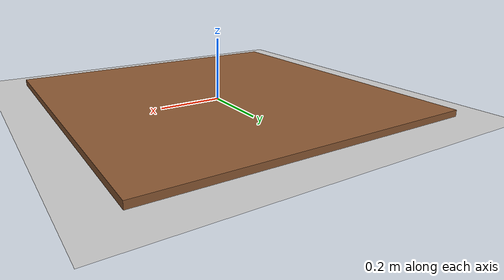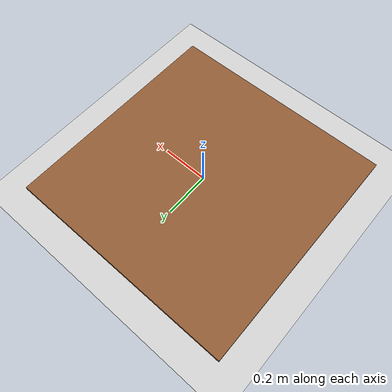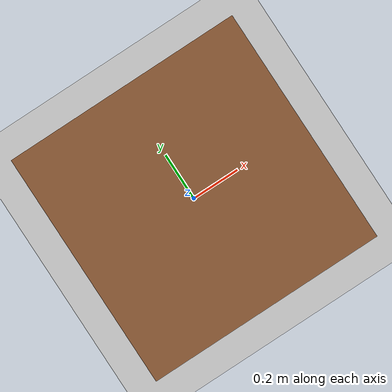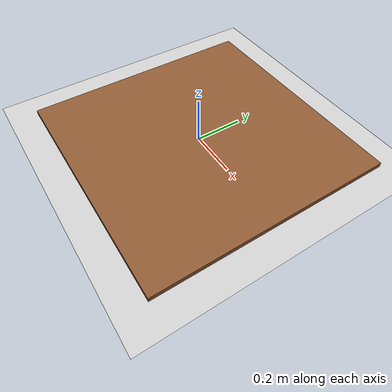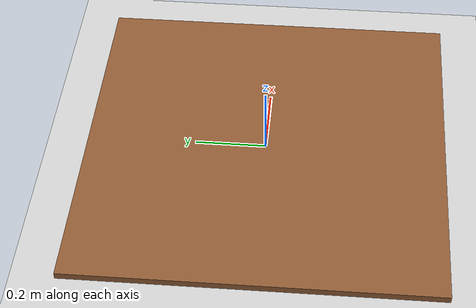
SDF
<?xml version="1.0" ?>
<sdf version="1.6">
  <world name="empty">
    <physics name="1ms" type="ignored">
      <max_step_size>0.001</max_step_size>
      <real_time_factor>1.0</real_time_factor>
    </physics>
    <plugin
      filename="gz-sim-physics-system"
      name="gz::sim::systems::Physics">
      <engine>
        <filename>gz-physics-bullet-featherstone-plugin</filename>
      </engine>
    </plugin>
    <plugin
      filename="gz-sim-user-commands-system"
      name="gz::sim::systems::UserCommands">
    </plugin>
    <plugin
      filename="gz-sim-scene-broadcaster-system"
      name="gz::sim::systems::SceneBroadcaster">
    </plugin>
    <plugin
      filename="gz-sim-contact-system"
      name="gz::sim::systems::Contact">
    </plugin>
    <plugin
      filename="gz-sim-sensors-system"
      name="gz::sim::systems::Sensors">
      <render_engine>ogre2</render_engine>
    </plugin>

    <light type="directional" name="sun">
      <cast_shadows>true</cast_shadows>
      <pose>0 0 10 0 0 0</pose>
      <diffuse>0.8 0.8 0.8 1</diffuse>
      <specular>0.2 0.2 0.2 1</specular>
      <attenuation>
        <range>1000</range>
        <constant>0.9</constant>
        <linear>0.01</linear>
        <quadratic>0.001</quadratic>
      </attenuation>
      <direction>-0.5 0.1 -0.9</direction>
    </light>

    <model name="ground_plane">
      <static>true</static>
      <link name="link">
        <collision name="collision">
          <geometry>
            <plane>
              <normal>0 0 1</normal>
              <size>100 100</size>
            </plane>
          </geometry>
        </collision>
        <visual name="visual">
          <geometry>
            <plane>
              <normal>0 0 1</normal>
              <size>100 100</size>
            </plane>
          </geometry>
          <material>
            <ambient>0.8 0.8 0.8 1</ambient>
            <diffuse>0.8 0.8 0.8 1</diffuse>
            <specular>0.8 0.8 0.8 1</specular>
          </material>
        </visual>
      </link>
    </model>

    <model name="table">
      <static>true</static>
      <pose>0 0 0.01 0 0 0</pose>
      <link name="link">
        <collision name="collision">
          <geometry>
            <box><size>1.016 1.016 0.02</size></box>
          </geometry>
        </collision>
        <visual name="visual">
          <geometry>
            <box><size>1.016 1.016 0.02</size></box>
          </geometry>
          <material>
            <ambient>0.55 0.35 0.2 1</ambient>
            <diffuse>0.55 0.35 0.2 1</diffuse>
            <specular>0.1 0.1 0.1 1</specular>
          </material>
        </visual>
      </link>
    </model>

  </world>
</sdf>
